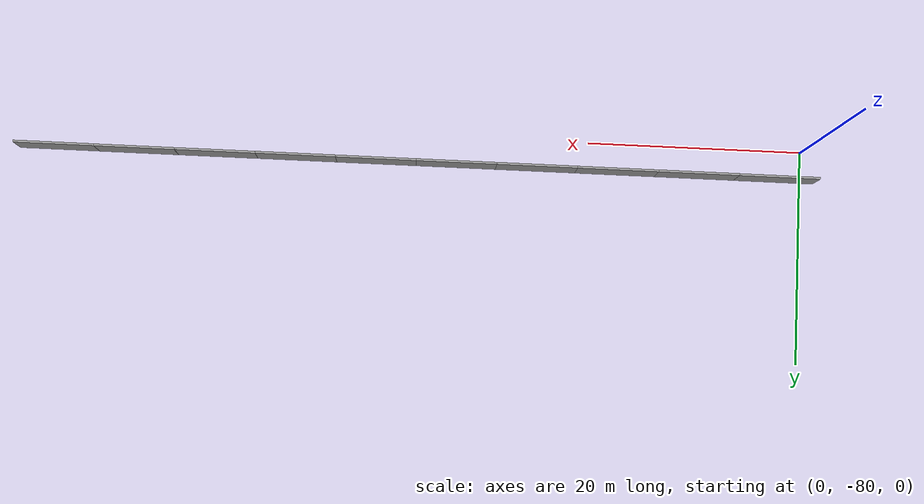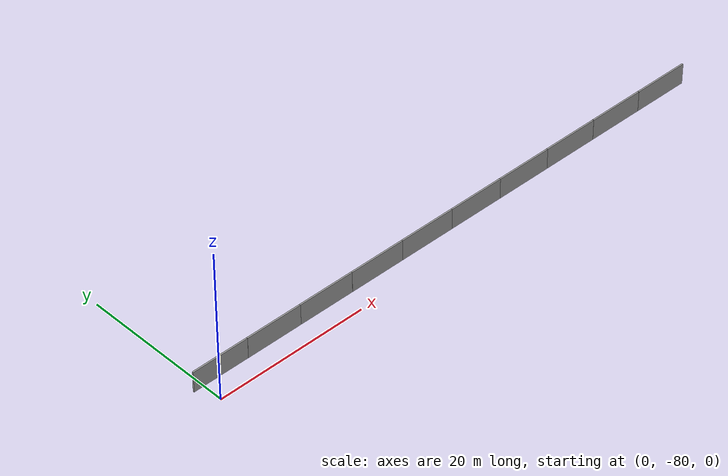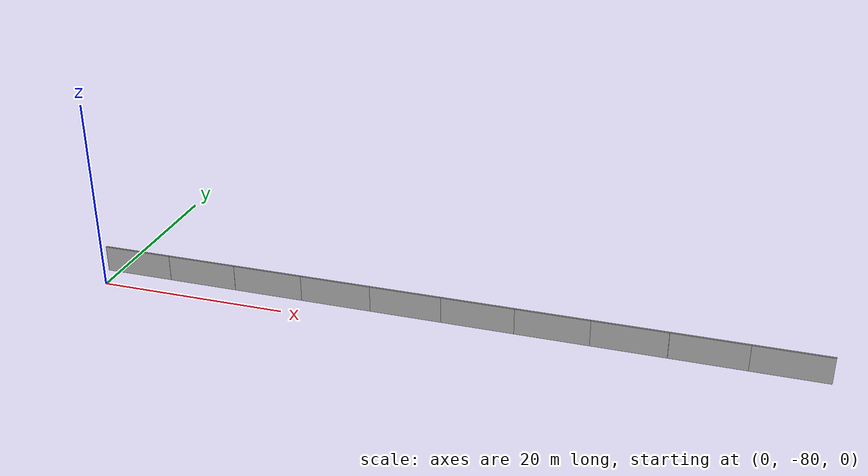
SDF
<sdf version="1.7">
 <world name="default">
  <model name="grey_wall_clone_10_clone_clone_clone_11_clone_clone_7">
   <static>1</static>
   <link name="link">
    <pose>0 0 1.4 0 -0 0</pose>
    <collision name="collision"><geometry><box><size>7.5 0.2 2.8</size></box></geometry></collision>
    <visual name="visual">
     <cast_shadows>0</cast_shadows>
     <geometry><box><size>7.5 0.2 2.8</size></box></geometry>
     <material>
      <script>
       <uri>model://forest/grey_wall/materials/scripts</uri>
       <uri>model://forest/grey_wall/materials/textures</uri>
       <name>vrc/grey_wall</name>
      </script>
     </material>
    </visual>
   </link>
   <pose>2.45064 -77.2385 0 0 -0 0</pose>
  </model>
  <model name="grey_wall_clone_10_clone_clone_clone_11_clone_clone_8">
   <static>1</static>
   <link name="link">
    <pose>0 0 1.4 0 -0 0</pose>
    <collision name="collision"><geometry><box><size>7.5 0.2 2.8</size></box></geometry></collision>
    <visual name="visual">
     <cast_shadows>0</cast_shadows>
     <geometry><box><size>7.5 0.2 2.8</size></box></geometry>
     <material>
      <script>
       <uri>model://forest/grey_wall/materials/scripts</uri>
       <uri>model://forest/grey_wall/materials/textures</uri>
       <name>vrc/grey_wall</name>
      </script>
     </material>
    </visual>
   </link>
   <pose>9.9578 -77.2456 0 0 -0 0</pose>
  </model>
  <model name="grey_wall_clone_10_clone_clone_clone_11_clone_clone_9">
   <static>1</static>
   <link name="link">
    <pose>0 0 1.4 0 -0 0</pose>
    <collision name="collision"><geometry><box><size>7.5 0.2 2.8</size></box></geometry></collision>
    <visual name="visual">
     <cast_shadows>0</cast_shadows>
     <geometry><box><size>7.5 0.2 2.8</size></box></geometry>
     <material>
      <script>
       <uri>model://forest/grey_wall/materials/scripts</uri>
       <uri>model://forest/grey_wall/materials/textures</uri>
       <name>vrc/grey_wall</name>
      </script>
     </material>
    </visual>
   </link>
   <pose>17.442 -77.2428 0 0 -0 0</pose>
  </model>
  <model name="grey_wall_clone_10_clone_clone_clone_11_clone_clone_10">
   <static>1</static>
   <link name="link">
    <pose>0 0 1.4 0 -0 0</pose>
    <collision name="collision"><geometry><box><size>7.5 0.2 2.8</size></box></geometry></collision>
    <visual name="visual">
     <cast_shadows>0</cast_shadows>
     <geometry><box><size>7.5 0.2 2.8</size></box></geometry>
     <material>
      <script>
       <uri>model://forest/grey_wall/materials/scripts</uri>
       <uri>model://forest/grey_wall/materials/textures</uri>
       <name>vrc/grey_wall</name>
      </script>
     </material>
    </visual>
   </link>
   <pose>24.9441 -77.2473 0 0 -0 0</pose>
  </model>
  <model name="grey_wall_clone_10_clone_clone_clone_11_clone_clone_11">
   <static>1</static>
   <link name="link">
    <pose>0 0 1.4 0 -0 0</pose>
    <collision name="collision"><geometry><box><size>7.5 0.2 2.8</size></box></geometry></collision>
    <visual name="visual">
     <cast_shadows>0</cast_shadows>
     <geometry><box><size>7.5 0.2 2.8</size></box></geometry>
     <material>
      <script>
       <uri>model://forest/grey_wall/materials/scripts</uri>
       <uri>model://forest/grey_wall/materials/textures</uri>
       <name>vrc/grey_wall</name>
      </script>
     </material>
    </visual>
   </link>
   <pose>32.4421 -77.2463 0 0 -0 0</pose>
  </model>
  <model name="grey_wall_clone_10_clone_clone_clone_11_clone_clone_12">
   <static>1</static>
   <link name="link">
    <pose>0 0 1.4 0 -0 0</pose>
    <collision name="collision"><geometry><box><size>7.5 0.2 2.8</size></box></geometry></collision>
    <visual name="visual">
     <cast_shadows>0</cast_shadows>
     <geometry><box><size>7.5 0.2 2.8</size></box></geometry>
     <material>
      <script>
       <uri>model://forest/grey_wall/materials/scripts</uri>
       <uri>model://forest/grey_wall/materials/textures</uri>
       <name>vrc/grey_wall</name>
      </script>
     </material>
    </visual>
   </link>
   <pose>39.9314 -77.2456 0 0 -0 0</pose>
  </model>
  <model name="grey_wall_clone_10_clone_clone_clone_11_clone_clone_13">
   <static>1</static>
   <link name="link">
    <pose>0 0 1.4 0 -0 0</pose>
    <collision name="collision"><geometry><box><size>7.5 0.2 2.8</size></box></geometry></collision>
    <visual name="visual">
     <cast_shadows>0</cast_shadows>
     <geometry><box><size>7.5 0.2 2.8</size></box></geometry>
     <material>
      <script>
       <uri>model://forest/grey_wall/materials/scripts</uri>
       <uri>model://forest/grey_wall/materials/textures</uri>
       <name>vrc/grey_wall</name>
      </script>
     </material>
    </visual>
   </link>
   <pose>47.429 -77.2489 0 0 -0 0</pose>
  </model>
  <model name="grey_wall_clone_10_clone_clone_clone_11_clone_clone_14">
   <static>1</static>
   <link name="link">
    <pose>0 0 1.4 0 -0 0</pose>
    <collision name="collision"><geometry><box><size>7.5 0.2 2.8</size></box></geometry></collision>
    <visual name="visual">
     <cast_shadows>0</cast_shadows>
     <geometry><box><size>7.5 0.2 2.8</size></box></geometry>
     <material>
      <script>
       <uri>model://forest/grey_wall/materials/scripts</uri>
       <uri>model://forest/grey_wall/materials/textures</uri>
       <name>vrc/grey_wall</name>
      </script>
     </material>
    </visual>
   </link>
   <pose>54.8935 -77.2438 0 0 -0 0</pose>
  </model>
  <model name="grey_wall_clone_10_clone_clone_clone_11_clone_clone_15">
   <static>1</static>
   <link name="link">
    <pose>0 0 1.4 0 -0 0</pose>
    <collision name="collision"><geometry><box><size>7.5 0.2 2.8</size></box></geometry></collision>
    <visual name="visual">
     <cast_shadows>0</cast_shadows>
     <geometry><box><size>7.5 0.2 2.8</size></box></geometry>
     <material>
      <script>
       <uri>model://forest/grey_wall/materials/scripts</uri>
       <uri>model://forest/grey_wall/materials/textures</uri>
       <name>vrc/grey_wall</name>
      </script>
     </material>
    </visual>
   </link>
   <pose>62.4043 -77.2429 0 0 -0 0</pose>
  </model>
  <model name="grey_wall_clone_10_clone_clone_clone_11_clone_clone_16">
   <static>1</static>
   <link name="link">
    <pose>0 0 1.4 0 -0 0</pose>
    <collision name="collision"><geometry><box><size>7.5 0.2 2.8</size></box></geometry></collision>
    <visual name="visual">
     <cast_shadows>0</cast_shadows>
     <geometry><box><size>7.5 0.2 2.8</size></box></geometry>
     <material>
      <script>
       <uri>model://forest/grey_wall/materials/scripts</uri>
       <uri>model://forest/grey_wall/materials/textures</uri>
       <name>vrc/grey_wall</name>
      </script>
     </material>
    </visual>
   </link>
   <pose>69.8968 -77.2494 0 0 -0 0</pose>
  </model>
 </world>
</sdf>
